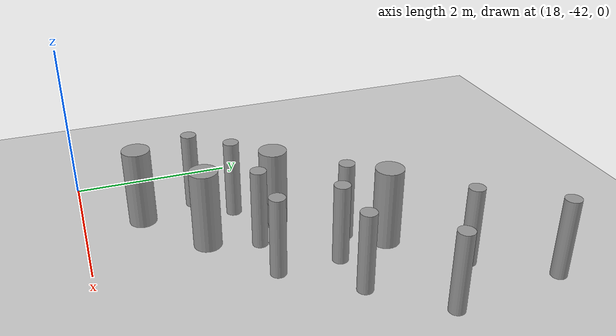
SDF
<sdf version="1.6">
 <world name="default">
  <model name="ground_plane">
   <static>1</static>
   <link name="link">
    <collision name="collision">
     <geometry><plane><normal>0 0 1</normal><size>100 100</size></plane></geometry>
     <surface><friction><ode><mu>100</mu><mu2>50</mu2></ode></friction></surface>
    </collision>
    <visual name="visual">
     <cast_shadows>0</cast_shadows>
     <geometry><plane><normal>0 0 1</normal><size>100 100</size></plane></geometry>
     <material>
      <script><uri>file://media/materials/scripts/gazebo.material</uri><name>Gazebo/Grey</name></script>
     </material>
    </visual>
   </link>
  </model>
  <model name="cyl_wall_clone_clone_1_clone_1_clone_clone_0_clone_1">
   <link name="link_0">
    <pose>-2.73893 -0.366465 0 0 -0 0</pose>
    <inertial>
     <mass>0.0374993</mass>
     <inertia>
      <ixx>0.00321281</ixx>
      <ixy>0</ixy>
      <ixz>0</ixz>
      <iyy>0.00321281</iyy>
      <iyz>0</iyz>
      <izz>0.000175774</izz>
     </inertia>
    </inertial>
    <visual name="visual">
     <geometry><cylinder><radius>0.0968661</radius><length>1</length></cylinder></geometry>
     <material>
      <lighting>1</lighting>
      <script><uri>file://media/materials/scripts/gazebo.material</uri><name>Gazebo/Grey</name></script>
      <ambient>0.3 0.3 0.3 1</ambient>
      <diffuse>0.7 0.7 0.7 1</diffuse>
      <specular>0.01 0.01 0.01 1</specular>
      <emissive>0 0 0 1</emissive>
     </material>
    </visual>
    <collision name="collision">
     <geometry><cylinder><radius>0.096866</radius><length>1</length></cylinder></geometry>
     <surface>
      <friction>
       <ode><mu>1</mu><mu2>1</mu2><fdir1>0 0 0</fdir1><slip1>0</slip1><slip2>0</slip2></ode>
       <torsional>
        <coefficient>1</coefficient>
        <patch_radius>0</patch_radius>
        <surface_radius>0</surface_radius>
        <use_patch_radius>1</use_patch_radius>
        <ode><slip>0</slip></ode>
       </torsional>
      </friction>
      <bounce><restitution_coefficient>0</restitution_coefficient><threshold>1e+06</threshold></bounce>
      <contact>
       <collide_without_contact>0</collide_without_contact>
       <collide_without_contact_bitmask>1</collide_without_contact_bitmask>
       <collide_bitmask>1</collide_bitmask>
       <ode>
        <soft_cfm>0</soft_cfm>
        <soft_erp>0.2</soft_erp>
        <kp>1e+13</kp>
        <kd>1</kd>
        <max_vel>0.01</max_vel>
        <min_depth>0</min_depth>
       </ode>
       <bullet>
        <split_impulse>1</split_impulse>
        <split_impulse_penetration_threshold>-0.01</split_impulse_penetration_threshold>
        <soft_cfm>0</soft_cfm>
        <soft_erp>0.2</soft_erp>
        <kp>1e+13</kp>
        <kd>1</kd>
       </bullet>
      </contact>
     </surface>
    </collision>
   </link>
   <link name="link_0_clone">
    <pose>-1.73893 0.61877 0 0 -0 0</pose>
    <inertial>
     <mass>0.0374993</mass>
     <inertia>
      <ixx>0.00321281</ixx>
      <ixy>0</ixy>
      <ixz>0</ixz>
      <iyy>0.00321281</iyy>
      <iyz>0</iyz>
      <izz>0.000175774</izz>
     </inertia>
    </inertial>
    <visual name="visual">
     <geometry><cylinder><radius>0.0968661</radius><length>1</length></cylinder></geometry>
     <material>
      <lighting>1</lighting>
      <script><uri>file://media/materials/scripts/gazebo.material</uri><name>Gazebo/Grey</name></script>
      <ambient>0.3 0.3 0.3 1</ambient>
      <diffuse>0.7 0.7 0.7 1</diffuse>
      <specular>0.01 0.01 0.01 1</specular>
      <emissive>0 0 0 1</emissive>
      <shader type="pixel"/>
     </material>
    </visual>
    <collision name="collision">
     <geometry><cylinder><radius>0.096866</radius><length>1</length></cylinder></geometry>
     <surface>
      <friction>
       <ode><mu>1</mu><mu2>1</mu2><fdir1>0 0 0</fdir1><slip1>0</slip1><slip2>0</slip2></ode>
       <torsional>
        <coefficient>1</coefficient>
        <patch_radius>0</patch_radius>
        <surface_radius>0</surface_radius>
        <use_patch_radius>1</use_patch_radius>
        <ode><slip>0</slip></ode>
       </torsional>
      </friction>
      <bounce><restitution_coefficient>0</restitution_coefficient><threshold>1e+06</threshold></bounce>
      <contact>
       <collide_without_contact>0</collide_without_contact>
       <collide_without_contact_bitmask>1</collide_without_contact_bitmask>
       <collide_bitmask>1</collide_bitmask>
       <ode>
        <soft_cfm>0</soft_cfm>
        <soft_erp>0.2</soft_erp>
        <kp>1e+13</kp>
        <kd>1</kd>
        <max_vel>0.01</max_vel>
        <min_depth>0</min_depth>
       </ode>
       <bullet>
        <split_impulse>1</split_impulse>
        <split_impulse_penetration_threshold>-0.01</split_impulse_penetration_threshold>
        <soft_cfm>0</soft_cfm>
        <soft_erp>0.2</soft_erp>
        <kp>1e+13</kp>
        <kd>1</kd>
       </bullet>
      </contact>
     </surface>
    </collision>
   </link>
   <link name="link_0_clone_clone">
    <pose>-0.327073 0.143919 0 0 -0 0</pose>
    <inertial>
     <mass>0.0374993</mass>
     <inertia>
      <ixx>0.00321281</ixx>
      <ixy>0</ixy>
      <ixz>0</ixz>
      <iyy>0.00321281</iyy>
      <iyz>0</iyz>
      <izz>0.000175774</izz>
     </inertia>
    </inertial>
    <visual name="visual">
     <geometry><cylinder><radius>0.0968661</radius><length>1</length></cylinder></geometry>
     <material>
      <lighting>1</lighting>
      <script><uri>file://media/materials/scripts/gazebo.material</uri><name>Gazebo/Grey</name></script>
      <ambient>0.3 0.3 0.3 1</ambient>
      <diffuse>0.7 0.7 0.7 1</diffuse>
      <specular>0.01 0.01 0.01 1</specular>
      <emissive>0 0 0 1</emissive>
      <shader type="pixel"/>
     </material>
    </visual>
    <collision name="collision">
     <geometry><cylinder><radius>0.096866</radius><length>1</length></cylinder></geometry>
     <surface>
      <friction>
       <ode><mu>1</mu><mu2>1</mu2><fdir1>0 0 0</fdir1><slip1>0</slip1><slip2>0</slip2></ode>
       <torsional>
        <coefficient>1</coefficient>
        <patch_radius>0</patch_radius>
        <surface_radius>0</surface_radius>
        <use_patch_radius>1</use_patch_radius>
        <ode><slip>0</slip></ode>
       </torsional>
      </friction>
      <bounce><restitution_coefficient>0</restitution_coefficient><threshold>1e+06</threshold></bounce>
      <contact>
       <collide_without_contact>0</collide_without_contact>
       <collide_without_contact_bitmask>1</collide_without_contact_bitmask>
       <collide_bitmask>1</collide_bitmask>
       <ode>
        <soft_cfm>0</soft_cfm>
        <soft_erp>0.2</soft_erp>
        <kp>1e+13</kp>
        <kd>1</kd>
        <max_vel>0.01</max_vel>
        <min_depth>0</min_depth>
       </ode>
       <bullet>
        <split_impulse>1</split_impulse>
        <split_impulse_penetration_threshold>-0.01</split_impulse_penetration_threshold>
        <soft_cfm>0</soft_cfm>
        <soft_erp>0.2</soft_erp>
        <kp>1e+13</kp>
        <kd>1</kd>
       </bullet>
      </contact>
     </surface>
    </collision>
   </link>
   <link name="link_0_clone_clone_0">
    <pose>1.26107 -0.419359 0 0 -0 0</pose>
    <inertial>
     <mass>0.0374993</mass>
     <inertia>
      <ixx>0.00321281</ixx>
      <ixy>0</ixy>
      <ixz>0</ixz>
      <iyy>0.00321281</iyy>
      <iyz>0</iyz>
      <izz>0.000175774</izz>
     </inertia>
    </inertial>
    <visual name="visual">
     <geometry><cylinder><radius>0.0968661</radius><length>1</length></cylinder></geometry>
     <material>
      <lighting>1</lighting>
      <script><uri>file://media/materials/scripts/gazebo.material</uri><name>Gazebo/Grey</name></script>
      <ambient>0.3 0.3 0.3 1</ambient>
      <diffuse>0.7 0.7 0.7 1</diffuse>
      <specular>0.01 0.01 0.01 1</specular>
      <emissive>0 0 0 1</emissive>
      <shader type="pixel"/>
     </material>
    </visual>
    <collision name="collision">
     <geometry><cylinder><radius>0.096866</radius><length>1</length></cylinder></geometry>
     <surface>
      <friction>
       <ode><mu>1</mu><mu2>1</mu2><fdir1>0 0 0</fdir1><slip1>0</slip1><slip2>0</slip2></ode>
       <torsional>
        <coefficient>1</coefficient>
        <patch_radius>0</patch_radius>
        <surface_radius>0</surface_radius>
        <use_patch_radius>1</use_patch_radius>
        <ode><slip>0</slip></ode>
       </torsional>
      </friction>
      <bounce><restitution_coefficient>0</restitution_coefficient><threshold>1e+06</threshold></bounce>
      <contact>
       <collide_without_contact>0</collide_without_contact>
       <collide_without_contact_bitmask>1</collide_without_contact_bitmask>
       <collide_bitmask>1</collide_bitmask>
       <ode>
        <soft_cfm>0</soft_cfm>
        <soft_erp>0.2</soft_erp>
        <kp>1e+13</kp>
        <kd>1</kd>
        <max_vel>0.01</max_vel>
        <min_depth>0</min_depth>
       </ode>
       <bullet>
        <split_impulse>1</split_impulse>
        <split_impulse_penetration_threshold>-0.01</split_impulse_penetration_threshold>
        <soft_cfm>0</soft_cfm>
        <soft_erp>0.2</soft_erp>
        <kp>1e+13</kp>
        <kd>1</kd>
       </bullet>
      </contact>
     </surface>
    </collision>
   </link>
   <link name="link_0_clone_clone_1">
    <pose>-1.73893 -0.277168 0 0 -0 0</pose>
    <inertial>
     <mass>0.0374993</mass>
     <inertia>
      <ixx>0.00321281</ixx>
      <ixy>0</ixy>
      <ixz>0</ixz>
      <iyy>0.00321281</iyy>
      <iyz>0</iyz>
      <izz>0.000175774</izz>
     </inertia>
    </inertial>
    <visual name="visual">
     <geometry><cylinder><radius>0.0968661</radius><length>1</length></cylinder></geometry>
     <material>
      <lighting>1</lighting>
      <script><uri>file://media/materials/scripts/gazebo.material</uri><name>Gazebo/Grey</name></script>
      <ambient>0.3 0.3 0.3 1</ambient>
      <diffuse>0.7 0.7 0.7 1</diffuse>
      <specular>0.01 0.01 0.01 1</specular>
      <emissive>0 0 0 1</emissive>
      <shader type="pixel"/>
     </material>
    </visual>
    <collision name="collision">
     <geometry><cylinder><radius>0.096866</radius><length>1</length></cylinder></geometry>
     <surface>
      <friction>
       <ode><mu>1</mu><mu2>1</mu2><fdir1>0 0 0</fdir1><slip1>0</slip1><slip2>0</slip2></ode>
       <torsional>
        <coefficient>1</coefficient>
        <patch_radius>0</patch_radius>
        <surface_radius>0</surface_radius>
        <use_patch_radius>1</use_patch_radius>
        <ode><slip>0</slip></ode>
       </torsional>
      </friction>
      <bounce><restitution_coefficient>0</restitution_coefficient><threshold>1e+06</threshold></bounce>
      <contact>
       <collide_without_contact>0</collide_without_contact>
       <collide_without_contact_bitmask>1</collide_without_contact_bitmask>
       <collide_bitmask>1</collide_bitmask>
       <ode>
        <soft_cfm>0</soft_cfm>
        <soft_erp>0.2</soft_erp>
        <kp>1e+13</kp>
        <kd>1</kd>
        <max_vel>0.01</max_vel>
        <min_depth>0</min_depth>
       </ode>
       <bullet>
        <split_impulse>1</split_impulse>
        <split_impulse_penetration_threshold>-0.01</split_impulse_penetration_threshold>
        <soft_cfm>0</soft_cfm>
        <soft_erp>0.2</soft_erp>
        <kp>1e+13</kp>
        <kd>1</kd>
       </bullet>
      </contact>
     </surface>
    </collision>
   </link>
   <link name="link_0_clone_clone_2">
    <pose>-0.738934 0.593961 0 0 -0 0</pose>
    <inertial>
     <mass>0.0374993</mass>
     <inertia>
      <ixx>0.00321281</ixx>
      <ixy>0</ixy>
      <ixz>0</ixz>
      <iyy>0.00321281</iyy>
      <iyz>0</iyz>
      <izz>0.000175774</izz>
     </inertia>
    </inertial>
    <visual name="visual">
     <geometry><cylinder><radius>0.0968661</radius><length>1</length></cylinder></geometry>
     <material>
      <lighting>1</lighting>
      <script><uri>file://media/materials/scripts/gazebo.material</uri><name>Gazebo/Grey</name></script>
      <ambient>0.3 0.3 0.3 1</ambient>
      <diffuse>0.7 0.7 0.7 1</diffuse>
      <specular>0.01 0.01 0.01 1</specular>
      <emissive>0 0 0 1</emissive>
      <shader type="pixel"/>
     </material>
    </visual>
    <collision name="collision">
     <geometry><cylinder><radius>0.096866</radius><length>1</length></cylinder></geometry>
     <surface>
      <friction>
       <ode><mu>1</mu><mu2>1</mu2><fdir1>0 0 0</fdir1><slip1>0</slip1><slip2>0</slip2></ode>
       <torsional>
        <coefficient>1</coefficient>
        <patch_radius>0</patch_radius>
        <surface_radius>0</surface_radius>
        <use_patch_radius>1</use_patch_radius>
        <ode><slip>0</slip></ode>
       </torsional>
      </friction>
      <bounce><restitution_coefficient>0</restitution_coefficient><threshold>1e+06</threshold></bounce>
      <contact>
       <collide_without_contact>0</collide_without_contact>
       <collide_without_contact_bitmask>1</collide_without_contact_bitmask>
       <collide_bitmask>1</collide_bitmask>
       <ode>
        <soft_cfm>0</soft_cfm>
        <soft_erp>0.2</soft_erp>
        <kp>1e+13</kp>
        <kd>1</kd>
        <max_vel>0.01</max_vel>
        <min_depth>0</min_depth>
       </ode>
       <bullet>
        <split_impulse>1</split_impulse>
        <split_impulse_penetration_threshold>-0.01</split_impulse_penetration_threshold>
        <soft_cfm>0</soft_cfm>
        <soft_erp>0.2</soft_erp>
        <kp>1e+13</kp>
        <kd>1</kd>
       </bullet>
      </contact>
     </surface>
    </collision>
   </link>
   <link name="link_0_clone_clone_3">
    <pose>0.261066 0.624849 0 0 -0 0</pose>
    <inertial>
     <mass>0.0374993</mass>
     <inertia>
      <ixx>0.00321281</ixx>
      <ixy>0</ixy>
      <ixz>0</ixz>
      <iyy>0.00321281</iyy>
      <iyz>0</iyz>
      <izz>0.000175774</izz>
     </inertia>
    </inertial>
    <visual name="visual">
     <geometry><cylinder><radius>0.0968661</radius><length>1</length></cylinder></geometry>
     <material>
      <lighting>1</lighting>
      <script><uri>file://media/materials/scripts/gazebo.material</uri><name>Gazebo/Grey</name></script>
      <ambient>0.3 0.3 0.3 1</ambient>
      <diffuse>0.7 0.7 0.7 1</diffuse>
      <specular>0.01 0.01 0.01 1</specular>
      <emissive>0 0 0 1</emissive>
      <shader type="pixel"/>
     </material>
    </visual>
    <collision name="collision">
     <geometry><cylinder><radius>0.096866</radius><length>1</length></cylinder></geometry>
     <surface>
      <friction>
       <ode><mu>1</mu><mu2>1</mu2><fdir1>0 0 0</fdir1><slip1>0</slip1><slip2>0</slip2></ode>
       <torsional>
        <coefficient>1</coefficient>
        <patch_radius>0</patch_radius>
        <surface_radius>0</surface_radius>
        <use_patch_radius>1</use_patch_radius>
        <ode><slip>0</slip></ode>
       </torsional>
      </friction>
      <bounce><restitution_coefficient>0</restitution_coefficient><threshold>1e+06</threshold></bounce>
      <contact>
       <collide_without_contact>0</collide_without_contact>
       <collide_without_contact_bitmask>1</collide_without_contact_bitmask>
       <collide_bitmask>1</collide_bitmask>
       <ode>
        <soft_cfm>0</soft_cfm>
        <soft_erp>0.2</soft_erp>
        <kp>1e+13</kp>
        <kd>1</kd>
        <max_vel>0.01</max_vel>
        <min_depth>0</min_depth>
       </ode>
       <bullet>
        <split_impulse>1</split_impulse>
        <split_impulse_penetration_threshold>-0.01</split_impulse_penetration_threshold>
        <soft_cfm>0</soft_cfm>
        <soft_erp>0.2</soft_erp>
        <kp>1e+13</kp>
        <kd>1</kd>
       </bullet>
      </contact>
     </surface>
    </collision>
   </link>
   <link name="link_0_clone_clone_4">
    <pose>-0.239049 -0.353105 0 0 -0 0</pose>
    <inertial>
     <mass>0.0374993</mass>
     <inertia>
      <ixx>0.00321281</ixx>
      <ixy>0</ixy>
      <ixz>0</ixz>
      <iyy>0.00321281</iyy>
      <iyz>0</iyz>
      <izz>0.000175774</izz>
     </inertia>
    </inertial>
    <visual name="visual">
     <geometry><cylinder><radius>0.0968661</radius><length>1</length></cylinder></geometry>
     <material>
      <lighting>1</lighting>
      <script><uri>file://media/materials/scripts/gazebo.material</uri><name>Gazebo/Grey</name></script>
      <ambient>0.3 0.3 0.3 1</ambient>
      <diffuse>0.7 0.7 0.7 1</diffuse>
      <specular>0.01 0.01 0.01 1</specular>
      <emissive>0 0 0 1</emissive>
      <shader type="pixel"/>
     </material>
    </visual>
    <collision name="collision">
     <geometry><cylinder><radius>0.096866</radius><length>1</length></cylinder></geometry>
     <surface>
      <friction>
       <ode><mu>1</mu><mu2>1</mu2><fdir1>0 0 0</fdir1><slip1>0</slip1><slip2>0</slip2></ode>
       <torsional>
        <coefficient>1</coefficient>
        <patch_radius>0</patch_radius>
        <surface_radius>0</surface_radius>
        <use_patch_radius>1</use_patch_radius>
        <ode><slip>0</slip></ode>
       </torsional>
      </friction>
      <bounce><restitution_coefficient>0</restitution_coefficient><threshold>1e+06</threshold></bounce>
      <contact>
       <collide_without_contact>0</collide_without_contact>
       <collide_without_contact_bitmask>1</collide_without_contact_bitmask>
       <collide_bitmask>1</collide_bitmask>
       <ode>
        <soft_cfm>0</soft_cfm>
        <soft_erp>0.2</soft_erp>
        <kp>1e+13</kp>
        <kd>1</kd>
        <max_vel>0.01</max_vel>
        <min_depth>0</min_depth>
       </ode>
       <bullet>
        <split_impulse>1</split_impulse>
        <split_impulse_penetration_threshold>-0.01</split_impulse_penetration_threshold>
        <soft_cfm>0</soft_cfm>
        <soft_erp>0.2</soft_erp>
        <kp>1e+13</kp>
        <kd>1</kd>
       </bullet>
      </contact>
     </surface>
    </collision>
   </link>
   <link name="link_0_clone_clone_5">
    <pose>0.672792 0.143919 0 0 -0 0</pose>
    <inertial>
     <mass>0.0374993</mass>
     <inertia>
      <ixx>0.00321281</ixx>
      <ixy>0</ixy>
      <ixz>0</ixz>
      <iyy>0.00321281</iyy>
      <iyz>0</iyz>
      <izz>0.000175774</izz>
     </inertia>
    </inertial>
    <visual name="visual">
     <geometry><cylinder><radius>0.0968661</radius><length>1</length></cylinder></geometry>
     <material>
      <lighting>1</lighting>
      <script><uri>file://media/materials/scripts/gazebo.material</uri><name>Gazebo/Grey</name></script>
      <ambient>0.3 0.3 0.3 1</ambient>
      <diffuse>0.7 0.7 0.7 1</diffuse>
      <specular>0.01 0.01 0.01 1</specular>
      <emissive>0 0 0 1</emissive>
      <shader type="pixel"/>
     </material>
    </visual>
    <collision name="collision">
     <geometry><cylinder><radius>0.096866</radius><length>1</length></cylinder></geometry>
     <surface>
      <friction>
       <ode><mu>1</mu><mu2>1</mu2><fdir1>0 0 0</fdir1><slip1>0</slip1><slip2>0</slip2></ode>
       <torsional>
        <coefficient>1</coefficient>
        <patch_radius>0</patch_radius>
        <surface_radius>0</surface_radius>
        <use_patch_radius>1</use_patch_radius>
        <ode><slip>0</slip></ode>
       </torsional>
      </friction>
      <bounce><restitution_coefficient>0</restitution_coefficient><threshold>1e+06</threshold></bounce>
      <contact>
       <collide_without_contact>0</collide_without_contact>
       <collide_without_contact_bitmask>1</collide_without_contact_bitmask>
       <collide_bitmask>1</collide_bitmask>
       <ode>
        <soft_cfm>0</soft_cfm>
        <soft_erp>0.2</soft_erp>
        <kp>1e+13</kp>
        <kd>1</kd>
        <max_vel>0.01</max_vel>
        <min_depth>0</min_depth>
       </ode>
       <bullet>
        <split_impulse>1</split_impulse>
        <split_impulse_penetration_threshold>-0.01</split_impulse_penetration_threshold>
        <soft_cfm>0</soft_cfm>
        <soft_erp>0.2</soft_erp>
        <kp>1e+13</kp>
        <kd>1</kd>
       </bullet>
      </contact>
     </surface>
    </collision>
   </link>
   <link name="link_0_clone_clone_6">
    <pose>1.84596 -0.433423 0 0 -0 0</pose>
    <inertial>
     <mass>0.0374993</mass>
     <inertia>
      <ixx>0.00321281</ixx>
      <ixy>0</ixy>
      <ixz>0</ixz>
      <iyy>0.00321281</iyy>
      <iyz>0</iyz>
      <izz>0.000175774</izz>
     </inertia>
    </inertial>
    <visual name="visual">
     <geometry><cylinder><radius>0.0968661</radius><length>1</length></cylinder></geometry>
     <material>
      <lighting>1</lighting>
      <script><uri>file://media/materials/scripts/gazebo.material</uri><name>Gazebo/Grey</name></script>
      <ambient>0.3 0.3 0.3 1</ambient>
      <diffuse>0.7 0.7 0.7 1</diffuse>
      <specular>0.01 0.01 0.01 1</specular>
      <emissive>0 0 0 1</emissive>
      <shader type="pixel"/>
     </material>
    </visual>
    <collision name="collision">
     <geometry><cylinder><radius>0.096866</radius><length>1</length></cylinder></geometry>
     <surface>
      <friction>
       <ode><mu>1</mu><mu2>1</mu2><fdir1>0 0 0</fdir1><slip1>0</slip1><slip2>0</slip2></ode>
       <torsional>
        <coefficient>1</coefficient>
        <patch_radius>0</patch_radius>
        <surface_radius>0</surface_radius>
        <use_patch_radius>1</use_patch_radius>
        <ode><slip>0</slip></ode>
       </torsional>
      </friction>
      <bounce><restitution_coefficient>0</restitution_coefficient><threshold>1e+06</threshold></bounce>
      <contact>
       <collide_without_contact>0</collide_without_contact>
       <collide_without_contact_bitmask>1</collide_without_contact_bitmask>
       <collide_bitmask>1</collide_bitmask>
       <ode>
        <soft_cfm>0</soft_cfm>
        <soft_erp>0.2</soft_erp>
        <kp>1e+13</kp>
        <kd>1</kd>
        <max_vel>0.01</max_vel>
        <min_depth>0</min_depth>
       </ode>
       <bullet>
        <split_impulse>1</split_impulse>
        <split_impulse_penetration_threshold>-0.01</split_impulse_penetration_threshold>
        <soft_cfm>0</soft_cfm>
        <soft_erp>0.2</soft_erp>
        <kp>1e+13</kp>
        <kd>1</kd>
       </bullet>
      </contact>
     </surface>
    </collision>
   </link>
   <link name="link_1">
    <pose>-0.738934 -0.397931 0 0 -0 0</pose>
    <inertial>
     <mass>0.117398</mass>
     <inertia>
      <ixx>0.0106445</ixx>
      <ixy>0</ixy>
      <ixz>0</ixz>
      <iyy>0.0106445</iyy>
      <iyz>0</iyz>
      <izz>0.00172278</izz>
     </inertia>
    </inertial>
    <visual name="visual">
     <geometry><cylinder><radius>0.171317</radius><length>1</length></cylinder></geometry>
     <material>
      <lighting>1</lighting>
      <script><uri>file://media/materials/scripts/gazebo.material</uri><name>Gazebo/Grey</name></script>
      <ambient>0.3 0.3 0.3 1</ambient>
      <diffuse>0.7 0.7 0.7 1</diffuse>
      <specular>0.01 0.01 0.01 1</specular>
      <emissive>0 0 0 1</emissive>
     </material>
    </visual>
    <collision name="collision">
     <geometry><cylinder><radius>0.171317</radius><length>1</length></cylinder></geometry>
     <surface>
      <friction>
       <ode><mu>1</mu><mu2>1</mu2><fdir1>0 0 0</fdir1><slip1>0</slip1><slip2>0</slip2></ode>
       <torsional>
        <coefficient>1</coefficient>
        <patch_radius>0</patch_radius>
        <surface_radius>0</surface_radius>
        <use_patch_radius>1</use_patch_radius>
        <ode><slip>0</slip></ode>
       </torsional>
      </friction>
      <bounce><restitution_coefficient>0</restitution_coefficient><threshold>1e+06</threshold></bounce>
      <contact>
       <collide_without_contact>0</collide_without_contact>
       <collide_without_contact_bitmask>1</collide_without_contact_bitmask>
       <collide_bitmask>1</collide_bitmask>
       <ode>
        <soft_cfm>0</soft_cfm>
        <soft_erp>0.2</soft_erp>
        <kp>1e+13</kp>
        <kd>1</kd>
        <max_vel>0.01</max_vel>
        <min_depth>0</min_depth>
       </ode>
       <bullet>
        <split_impulse>1</split_impulse>
        <split_impulse_penetration_threshold>-0.01</split_impulse_penetration_threshold>
        <soft_cfm>0</soft_cfm>
        <soft_erp>0.2</soft_erp>
        <kp>1e+13</kp>
        <kd>1</kd>
       </bullet>
      </contact>
     </surface>
    </collision>
   </link>
   <link name="link_1_clone">
    <pose>0.697784 -0.380861 0 0 -0 0</pose>
    <inertial>
     <mass>0.117398</mass>
     <inertia>
      <ixx>0.0106445</ixx>
      <ixy>0</ixy>
      <ixz>0</ixz>
      <iyy>0.0106445</iyy>
      <iyz>0</iyz>
      <izz>0.00172278</izz>
     </inertia>
    </inertial>
    <visual name="visual">
     <geometry><cylinder><radius>0.171317</radius><length>1</length></cylinder></geometry>
     <material>
      <lighting>1</lighting>
      <script><uri>file://media/materials/scripts/gazebo.material</uri><name>Gazebo/Grey</name></script>
      <ambient>0.3 0.3 0.3 1</ambient>
      <diffuse>0.7 0.7 0.7 1</diffuse>
      <specular>0.01 0.01 0.01 1</specular>
      <emissive>0 0 0 1</emissive>
      <shader type="pixel"/>
     </material>
    </visual>
    <collision name="collision">
     <geometry><cylinder><radius>0.171317</radius><length>1</length></cylinder></geometry>
     <surface>
      <friction>
       <ode><mu>1</mu><mu2>1</mu2><fdir1>0 0 0</fdir1><slip1>0</slip1><slip2>0</slip2></ode>
       <torsional>
        <coefficient>1</coefficient>
        <patch_radius>0</patch_radius>
        <surface_radius>0</surface_radius>
        <use_patch_radius>1</use_patch_radius>
        <ode><slip>0</slip></ode>
       </torsional>
      </friction>
      <bounce><restitution_coefficient>0</restitution_coefficient><threshold>1e+06</threshold></bounce>
      <contact>
       <collide_without_contact>0</collide_without_contact>
       <collide_without_contact_bitmask>1</collide_without_contact_bitmask>
       <collide_bitmask>1</collide_bitmask>
       <ode>
        <soft_cfm>0</soft_cfm>
        <soft_erp>0.2</soft_erp>
        <kp>1e+13</kp>
        <kd>1</kd>
        <max_vel>0.01</max_vel>
        <min_depth>0</min_depth>
       </ode>
       <bullet>
        <split_impulse>1</split_impulse>
        <split_impulse_penetration_threshold>-0.01</split_impulse_penetration_threshold>
        <soft_cfm>0</soft_cfm>
        <soft_erp>0.2</soft_erp>
        <kp>1e+13</kp>
        <kd>1</kd>
       </bullet>
      </contact>
     </surface>
    </collision>
   </link>
   <link name="link_1_clone_0">
    <pose>1.26107 0.358974 0 0 -0 0</pose>
    <inertial>
     <mass>0.117398</mass>
     <inertia>
      <ixx>0.0106445</ixx>
      <ixy>0</ixy>
      <ixz>0</ixz>
      <iyy>0.0106445</iyy>
      <iyz>0</iyz>
      <izz>0.00172278</izz>
     </inertia>
    </inertial>
    <visual name="visual">
     <geometry><cylinder><radius>0.171317</radius><length>1</length></cylinder></geometry>
     <material>
      <lighting>1</lighting>
      <script><uri>file://media/materials/scripts/gazebo.material</uri><name>Gazebo/Grey</name></script>
      <ambient>0.3 0.3 0.3 1</ambient>
      <diffuse>0.7 0.7 0.7 1</diffuse>
      <specular>0.01 0.01 0.01 1</specular>
      <emissive>0 0 0 1</emissive>
      <shader type="pixel"/>
     </material>
    </visual>
    <collision name="collision">
     <geometry><cylinder><radius>0.171317</radius><length>1</length></cylinder></geometry>
     <surface>
      <friction>
       <ode><mu>1</mu><mu2>1</mu2><fdir1>0 0 0</fdir1><slip1>0</slip1><slip2>0</slip2></ode>
       <torsional>
        <coefficient>1</coefficient>
        <patch_radius>0</patch_radius>
        <surface_radius>0</surface_radius>
        <use_patch_radius>1</use_patch_radius>
        <ode><slip>0</slip></ode>
       </torsional>
      </friction>
      <bounce><restitution_coefficient>0</restitution_coefficient><threshold>1e+06</threshold></bounce>
      <contact>
       <collide_without_contact>0</collide_without_contact>
       <collide_without_contact_bitmask>1</collide_without_contact_bitmask>
       <collide_bitmask>1</collide_bitmask>
       <ode>
        <soft_cfm>0</soft_cfm>
        <soft_erp>0.2</soft_erp>
        <kp>1e+13</kp>
        <kd>1</kd>
        <max_vel>0.01</max_vel>
        <min_depth>0</min_depth>
       </ode>
       <bullet>
        <split_impulse>1</split_impulse>
        <split_impulse_penetration_threshold>-0.01</split_impulse_penetration_threshold>
        <soft_cfm>0</soft_cfm>
        <soft_erp>0.2</soft_erp>
        <kp>1e+13</kp>
        <kd>1</kd>
       </bullet>
      </contact>
     </surface>
    </collision>
   </link>
   <link name="link_1_clone_1">
    <pose>2.26107 0.143919 0 0 -0 0</pose>
    <inertial>
     <mass>0.117398</mass>
     <inertia>
      <ixx>0.0106445</ixx>
      <ixy>0</ixy>
      <ixz>0</ixz>
      <iyy>0.0106445</iyy>
      <iyz>0</iyz>
      <izz>0.00172278</izz>
     </inertia>
    </inertial>
    <visual name="visual">
     <geometry><cylinder><radius>0.171317</radius><length>1</length></cylinder></geometry>
     <material>
      <lighting>1</lighting>
      <script><uri>file://media/materials/scripts/gazebo.material</uri><name>Gazebo/Grey</name></script>
      <ambient>0.3 0.3 0.3 1</ambient>
      <diffuse>0.7 0.7 0.7 1</diffuse>
      <specular>0.01 0.01 0.01 1</specular>
      <emissive>0 0 0 1</emissive>
      <shader type="pixel"/>
     </material>
    </visual>
    <collision name="collision">
     <geometry><cylinder><radius>0.171317</radius><length>1</length></cylinder></geometry>
     <surface>
      <friction>
       <ode><mu>1</mu><mu2>1</mu2><fdir1>0 0 0</fdir1><slip1>0</slip1><slip2>0</slip2></ode>
       <torsional>
        <coefficient>1</coefficient>
        <patch_radius>0</patch_radius>
        <surface_radius>0</surface_radius>
        <use_patch_radius>1</use_patch_radius>
        <ode><slip>0</slip></ode>
       </torsional>
      </friction>
      <bounce><restitution_coefficient>0</restitution_coefficient><threshold>1e+06</threshold></bounce>
      <contact>
       <collide_without_contact>0</collide_without_contact>
       <collide_without_contact_bitmask>1</collide_without_contact_bitmask>
       <collide_bitmask>1</collide_bitmask>
       <ode>
        <soft_cfm>0</soft_cfm>
        <soft_erp>0.2</soft_erp>
        <kp>1e+13</kp>
        <kd>1</kd>
        <max_vel>0.01</max_vel>
        <min_depth>0</min_depth>
       </ode>
       <bullet>
        <split_impulse>1</split_impulse>
        <split_impulse_penetration_threshold>-0.01</split_impulse_penetration_threshold>
        <soft_cfm>0</soft_cfm>
        <soft_erp>0.2</soft_erp>
        <kp>1e+13</kp>
        <kd>1</kd>
       </bullet>
      </contact>
     </surface>
    </collision>
   </link>
   <static>1</static>
   <pose>20.3081 -39.4149 0.5 0 0 -2.24061</pose>
  </model>
 </world>
</sdf>
